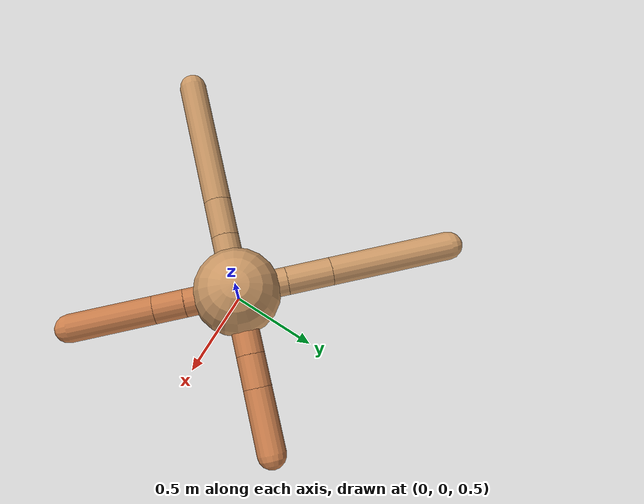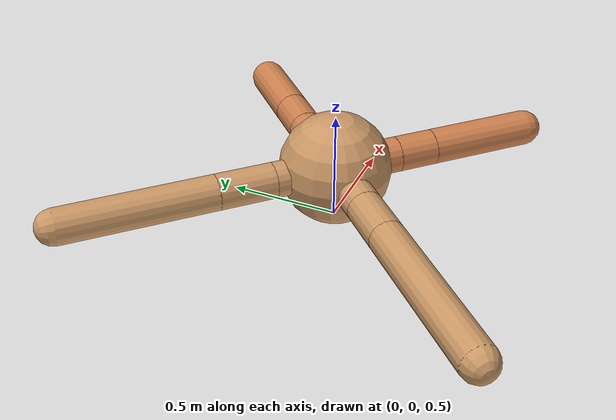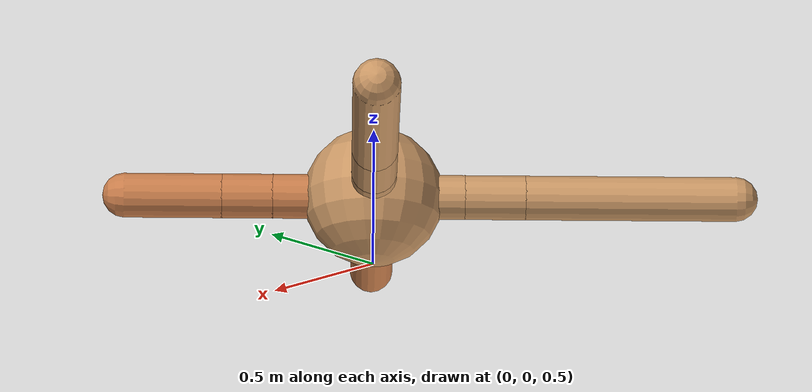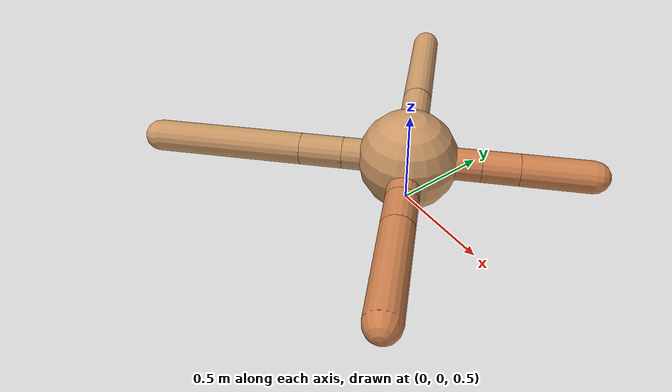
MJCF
<mujoco model="ant">
  <compiler angle="degree" coordinate="local" inertiafromgeom="true" />
  <option integrator="RK4" timestep="0.01" />
  <custom>
    <numeric data="0.0 0.0 0.55 1.0 0.0 0.0 0.0 0.0 1.0 0.0 -1.0 0.0 -1.0 0.0 1.0" name="init_qpos" />
  </custom>
  <default>
    <joint armature="1" damping="1" limited="true" />
    <geom conaffinity="0" condim="3" density="5.0" friction="1.5 0.1 0.1" margin="0.01" rgba="0.8 0.6 0.4 1" />
  </default>
  <worldbody>
    <body name="torso" pos="0 0 0.75">
      <geom name="torso_geom" pos="0 0 0" size="0.25" type="sphere" />

      <body name="front_left_leg" pos="0 0 0">
        <geom fromto="0.0 0.0 0.0 0.25328387553784387 0.25328387553784387 0.0" name="aux_1_geom" size="0.08" type="capsule" rgba=".8 .5 .3 1" />
        <body name="aux_1" pos="0.25328387553784387 0.25328387553784387 0.0">
          <joint axis="0 0 1" name="hip_1" pos="0.0 0.0 0.0" range="-40 40" type="hinge" />
          <geom fromto="0.0 0.0 0.0 0.12779000476654753 0.12779000476654753 0.0" name="left_leg_geom" size="0.08" type="capsule" rgba=".8 .5 .3 1" />
          <body pos="0.12779000476654753 0.12779000476654753 0.0" name="front_left_foot">
            <joint axis="-1 1 0" name="ankle_1" pos="0.0 0.0 0.0" range="30 100" type="hinge" />
            <geom fromto="0.0 0.0 0.0 0.24559478465852036 0.24559478465852036 0.0" name="left_ankle_geom" size="0.08" type="capsule" rgba=".8 .5 .3 1" />
          </body>
        </body>
      </body>
      <body name="front_right_leg" pos="0 0 0">
        <geom fromto="0.0 0.0 0.0 -0.20341336049528014 0.20341336049528014 0.0" name="aux_2_geom" size="0.08" type="capsule" />
        <body name="aux_2" pos="-0.20341336049528014 0.20341336049528014 0.0">
          <joint axis="0 0 1" name="hip_2" pos="0.0 0.0 0.0" range="-40 40" type="hinge" />
          <geom fromto="0.0 0.0 0.0 -0.18030182820311189 0.18030182820311189 0.0" name="right_leg_geom" size="0.08" type="capsule" />
          <body pos="-0.18030182820311189 0.18030182820311189 0.0" name="front_right_foot">
            <joint axis="1 1 0" name="ankle_2" pos="0.0 0.0 0.0" range="-100 -30" type="hinge" />
            <geom fromto="0.0 0.0 0.0 -0.48785965309079915 0.48785965309079915 0.0" name="right_ankle_geom" size="0.08" type="capsule" />
          </body>
        </body>
      </body>
      <body name="left_back_leg" pos="0 0 0">
        <geom fromto="0.0 0.0 0.0 -0.2305689289360019 -0.2305689289360019 0.0" name="aux_3_geom" size="0.08" type="capsule" />
        <body name="aux_3" pos="-0.2305689289360019 -0.2305689289360019 0.0">
          <joint axis="0 0 1" name="hip_3" pos="0.0 0.0 0.0" range="-40 40" type="hinge" />
          <geom fromto="0.0 0.0 0.0 -0.15272514082332525 -0.15272514082332525 0.0" name="back_leg_geom" size="0.08" type="capsule" />
          <body pos="-0.15272514082332525 -0.15272514082332525 0.0" name="left_back_foot">
            <joint axis="-1 1 0" name="ankle_3" pos="0.0 0.0 0.0" range="-100 -30" type="hinge" />
            <geom fromto="0.0 0.0 0.0 -0.5328055780612688 -0.5328055780612688 0.0" name="third_ankle_geom" size="0.08" type="capsule" />
          </body>
        </body>
      </body>
      <body name="right_back_leg" pos="0 0 0">
        <geom fromto="0.0 0.0 0.0 0.20951170118505846 -0.20951170118505846 0.0" name="aux_4_geom" size="0.08" type="capsule" rgba=".8 .5 .3 1" />
        <body name="aux_4" pos="0.20951170118505846 -0.20951170118505846 0.0">
          <joint axis="0 0 1" name="hip_4" pos="0.0 0.0 0.0" range="-40 40" type="hinge" />
          <geom fromto="0.0 0.0 0.0 0.12272875160176194 -0.12272875160176194 0.0" name="rightback_leg_geom" size="0.08" type="capsule" rgba=".8 .5 .3 1" />
          <body pos="0.12272875160176194 -0.12272875160176194 0.0" name="right_back_foot">
            <joint axis="1 1 0" name="ankle_4" pos="0.0 0.0 0.0" range="30 100" type="hinge" />
            <geom fromto="0.0 0.0 0.0 0.33601996717976346 -0.33601996717976346 0.0" name="fourth_ankle_geom" size="0.08" type="capsule" rgba=".8 .5 .3 1" />
          </body>
        </body>
      </body>
    </body>
  </worldbody>
  <actuator>
    <motor ctrllimited="true" ctrlrange="-1.0 1.0" joint="hip_4" gear="150" />
    <motor ctrllimited="true" ctrlrange="-1.0 1.0" joint="ankle_4" gear="150" />
    <motor ctrllimited="true" ctrlrange="-1.0 1.0" joint="hip_1" gear="150" />
    <motor ctrllimited="true" ctrlrange="-1.0 1.0" joint="ankle_1" gear="150" />
    <motor ctrllimited="true" ctrlrange="-1.0 1.0" joint="hip_2" gear="150" />
    <motor ctrllimited="true" ctrlrange="-1.0 1.0" joint="ankle_2" gear="150" />
    <motor ctrllimited="true" ctrlrange="-1.0 1.0" joint="hip_3" gear="150" />
    <motor ctrllimited="true" ctrlrange="-1.0 1.0" joint="ankle_3" gear="150" />
  </actuator>
</mujoco>
